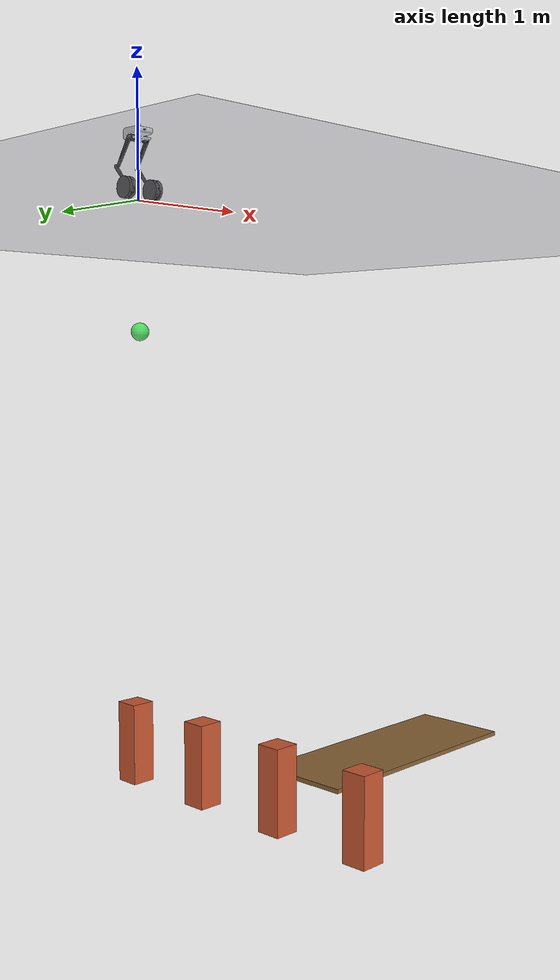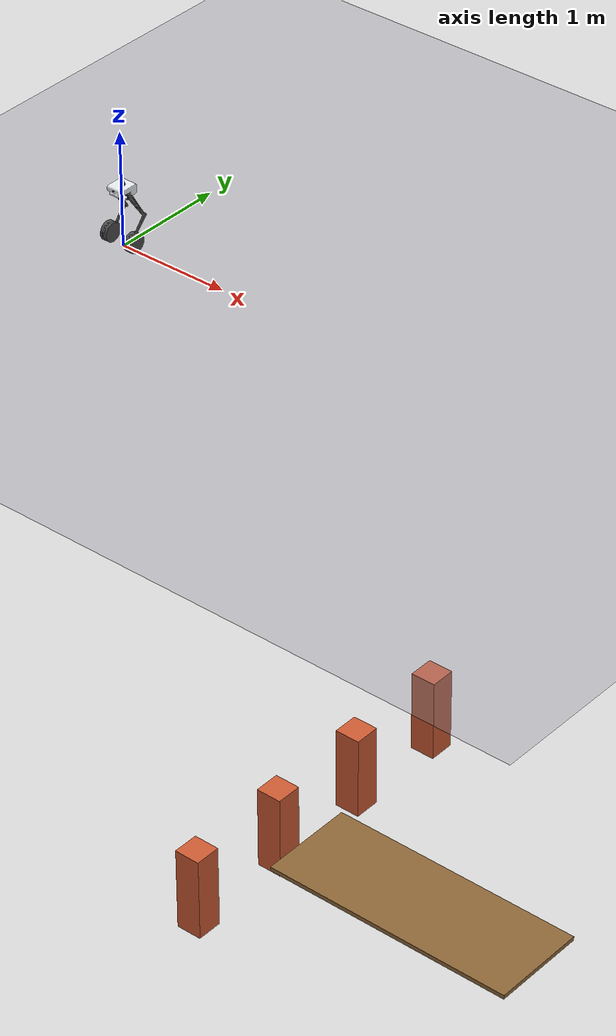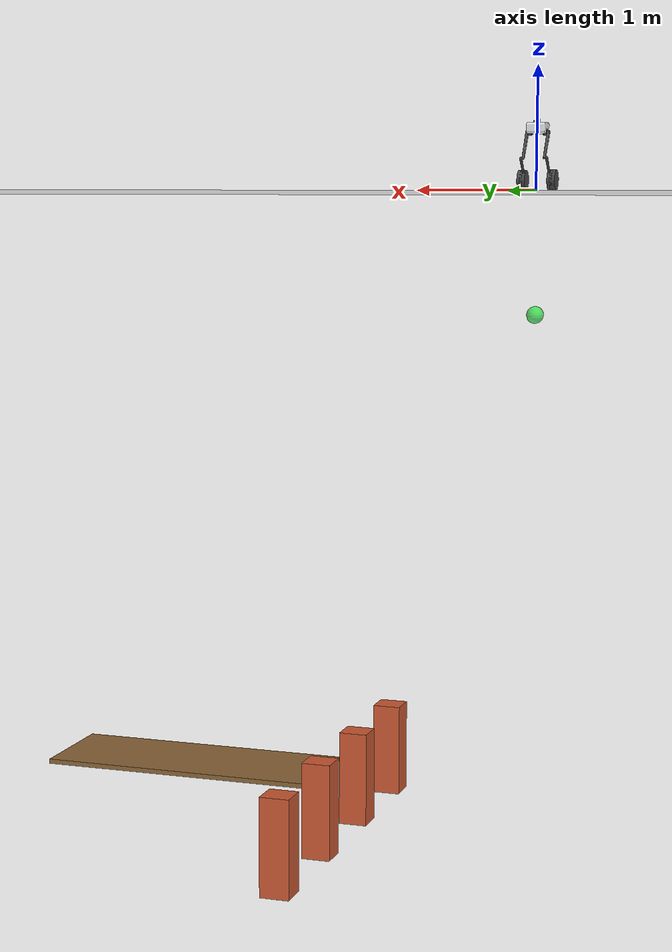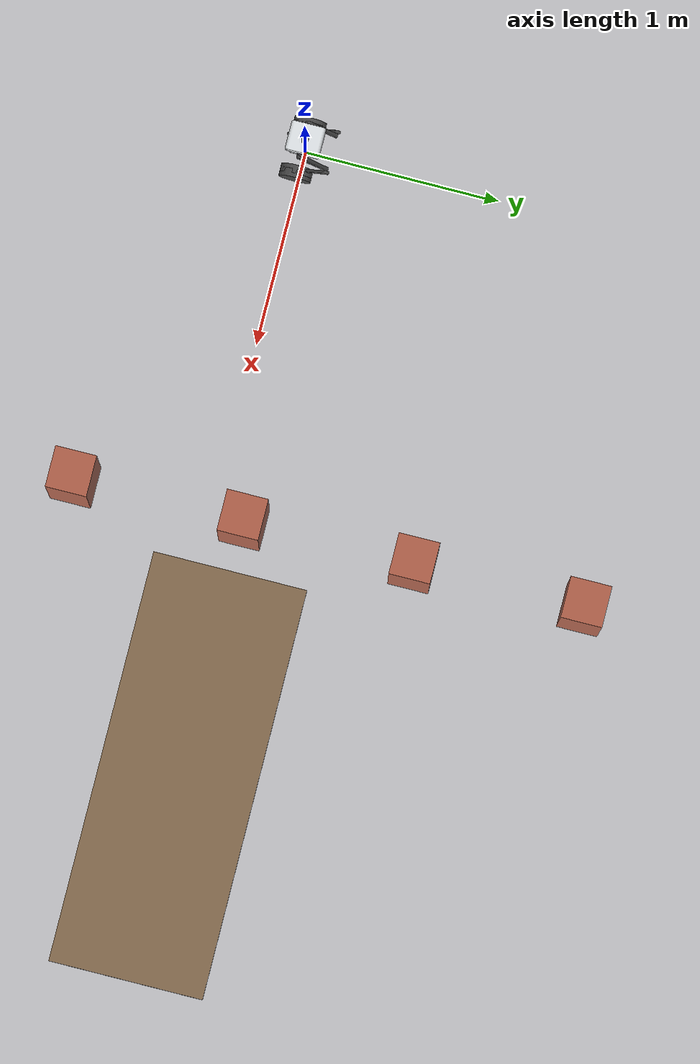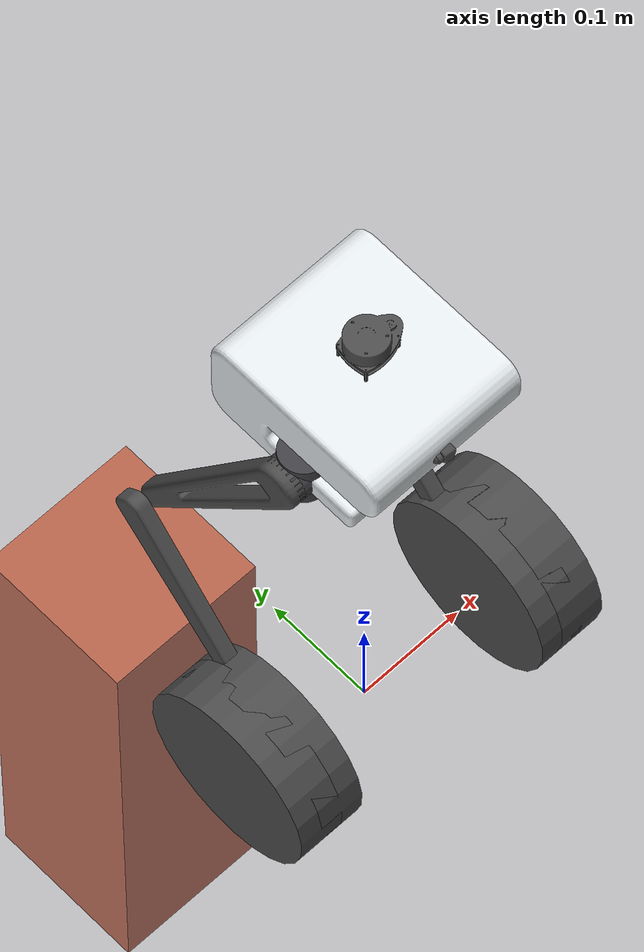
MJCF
<mujoco model="urdf_and_meshes_of_the_robot">
  <compiler angle="radian" meshdir="/mnt/c/Users/mtasfaw/Documents/personal/mybotV1-DRL-BASED/src/urdf_and_meshes_of_the_robot/meshes/"/>

  <option integrator="implicitfast" cone="elliptic"/>

  <size nkey="1"/>

  <visual>
    <global offwidth="1280" offheight="720"/>
  </visual>

  <asset>
    <mesh name="BODY_link" file="BODY_link.STL"/>
    <mesh name="Upper_left_leg" file="Upper_left_leg.STL"/>
    <mesh name="Lower_left_leg" file="Lower_left_leg.STL"/>
    <mesh name="Upper_right_link" file="Upper_right_link.STL"/>
    <mesh name="Lower_right_link" file="Lower_right_link.STL"/>
    <mesh name="lidar_link" file="lidar_link.STL"/>
    <mesh name="camera_link" file="camera_link.STL"/>
    <mesh name="IMU_link" file="IMU_link.STL"/>
  </asset>

  <worldbody>
    <geom name="floor" size="0 0 0.1" type="plane" rgba="0.5 0.5 0.55 1"/>
    <light pos="0 0 3" dir="0 0 -1" specular="0.1 0.1 0.1"/>
    <!-- external 3/4 view that always frames the robot (used by the recorder) -->
    <camera name="track" pos="0.95 -0.95 0.75" mode="targetbody" target="base_link"/>
    <!-- goal marker for Stage-2 navigation; mocap (kinematic), no collision.
         default underground so it is invisible unless a nav env sets mocap_pos. -->
    <body name="goal_marker" mocap="true" pos="0 0 -1">
      <geom type="sphere" size="0.07" rgba="0.1 0.9 0.2 0.7" contype="0" conaffinity="0" group="1"/>
    </body>
    <body name="obstacle_1" mocap="true" pos="1.5 0 -5">
      <geom type="box" size="0.12 0.12 0.40" rgba="0.80 0.35 0.20 1" group="2"/>
    </body>
    <body name="obstacle_2" mocap="true" pos="1.5 1 -5">
      <geom type="box" size="0.12 0.12 0.40" rgba="0.80 0.35 0.20 1" group="2"/>
    </body>
    <body name="obstacle_3" mocap="true" pos="1.5 -1 -5">
      <geom type="box" size="0.12 0.12 0.40" rgba="0.80 0.35 0.20 1" group="2"/>
    </body>
    <body name="obstacle_4" mocap="true" pos="1.5 2 -5">
      <geom type="box" size="0.12 0.12 0.40" rgba="0.80 0.35 0.20 1" group="2"/>
    </body>
    <!-- low "table": a wide slab the robot must SQUAT (duck) under; the env sets its
         height so the slab bottom sits below the robot's standing top. -->
    <body name="table_top" mocap="true" pos="3 0 -5">
      <geom type="box" size="1.2 0.45 0.02" rgba="0.55 0.40 0.22 1" group="2"/>
    </body>
    <body name="base_link" pos="0 0 0.52">
      <joint name="root" type="free"/>
      <body name="BODY_link">
        <inertial pos="0 0.0022646 -0.021333" quat="0.515796 0.483689 -0.483689 0.515796" mass="1.25697" diaginertia="0.00638137 0.0045914 0.00427733"/>
        <geom type="mesh" contype="0" conaffinity="0" group="1" density="0" rgba="0.89804 0.91765 0.92941 1" mesh="BODY_link"/>
        <geom type="mesh" rgba="0.89804 0.91765 0.92941 1" mesh="BODY_link"/>
        <body name="hip_yaw_link_left" pos="0.065 -0.0025 -0.055">
          <inertial pos="0 0 0" mass="0.12" diaginertia="0.0001 0.0001 0.0001"/>
          <joint name="hip_yaw_left" pos="0 0 0" axis="0 0 1" range="-0.785 0.785" actuatorfrcrange="-200 200" armature="0.01" damping="1" frictionloss="0.2"/>
          <geom size="0.02 0.0225" type="cylinder" contype="0" conaffinity="0" group="1" density="0" rgba="0.25 0.25 0.27 1"/>
          <body name="hip_roll_link_left">
            <inertial pos="0 0 0" mass="0.12" diaginertia="0.0001 0.0001 0.0001"/>
            <joint name="hip_roll_left" pos="0 0 0" axis="1 0 0" range="-0.785 0.785" actuatorfrcrange="-200 200" armature="0.01" damping="1" frictionloss="0.2"/>
            <geom size="0.02 0.0225" quat="0.707105 0 0.707108 0" type="cylinder" contype="0" conaffinity="0" group="1" density="0" rgba="0.25 0.25 0.27 1"/>
            <body name="Upper_left_leg" quat="0.339684 0.620172 0.339689 0.620172">
              <inertial pos="6.6396e-09 -0.10715 0.021958" quat="0.500419 0.499574 -0.499581 0.500425" mass="0.32627" diaginertia="0.00222141 0.0021991 4.28908e-05"/>
              <joint name="Upper_left_joint" pos="0 0 0" axis="0 0 -1" range="-1.57 1.57" actuatorfrcrange="-200 200" armature="0.01" damping="1" frictionloss="0.2"/>
              <geom type="mesh" contype="0" conaffinity="0" group="1" density="0" rgba="0.29804 0.29804 0.29804 1" mesh="Upper_left_leg"/>
              <geom type="mesh" rgba="0.29804 0.29804 0.29804 1" mesh="Upper_left_leg"/>
              <body name="Lower_left_leg" pos="0 -0.24941 0.032" quat="0.79946 0 0 -0.600719">
                <inertial pos="3.3987e-08 -0.095731 0.0075383" quat="0.500194 0.499818 -0.499806 0.500182" mass="0.20779" diaginertia="0.0010151 0.0010103 1.24204e-05"/>
                <joint name="Lower_left_joint" pos="0 0 0" axis="0 0 1" range="-1.57 1.57" actuatorfrcrange="-200 200" armature="0.01" damping="1" frictionloss="0.2"/>
                <geom type="mesh" contype="0" conaffinity="0" group="1" density="0" rgba="0.29804 0.29804 0.29804 1" mesh="Lower_left_leg"/>
                <geom type="mesh" rgba="0.29804 0.29804 0.29804 1" mesh="Lower_left_leg"/>
                <body name="Left_wheel" pos="0 -0.22885 0.015" quat="-3.37036e-06 0.917553 0.397614 -1.46052e-06">
                  <inertial pos="7.526e-08 -9.4982e-08 -0.021914" quat="0.653281 0.270598 -0.653281 0.270598" mass="0.12382" diaginertia="0.0003757 0.00019918 0.00019918"/>
                  <joint name="Left_joint" pos="0 0 0" axis="0 0 1" range="-1.57 1.57" actuatorfrcrange="-200 200" armature="0.005" damping="0.1" frictionloss="0.05"/>
                  <geom size="0.0826 0.0211" type="cylinder" contype="0" conaffinity="0" group="1" friction="1.2 0.01" density="0" rgba="0.29804 0.29804 0.29804 1"/>
                  <geom size="0.0826 0.0211" pos="0 0 -0.0211" type="cylinder" friction="1.2 0.01" rgba="0.29804 0.29804 0.29804 1"/>
                </body>
              </body>
            </body>
          </body>
        </body>
        <body name="hip_yaw_link_right" pos="-0.065 -0.0025 -0.055">
          <inertial pos="0 0 0" mass="0.12" diaginertia="0.0001 0.0001 0.0001"/>
          <joint name="hip_yaw_right" pos="0 0 0" axis="0 0 1" range="-0.785 0.785" actuatorfrcrange="-200 200" armature="0.01" damping="1" frictionloss="0.2"/>
          <geom size="0.02 0.0225" type="cylinder" contype="0" conaffinity="0" group="1" density="0" rgba="0.25 0.25 0.27 1"/>
          <body name="hip_roll_link_right">
            <inertial pos="0 0 0" mass="0.12" diaginertia="0.0001 0.0001 0.0001"/>
            <joint name="hip_roll_right" pos="0 0 0" axis="1 0 0" range="-0.785 0.785" actuatorfrcrange="-200 200" armature="0.01" damping="1" frictionloss="0.2"/>
            <geom size="0.02 0.0225" quat="0.707105 0 0.707108 0" type="cylinder" contype="0" conaffinity="0" group="1" density="0" rgba="0.25 0.25 0.27 1"/>
            <body name="Upper_right_link" quat="0.331122 0.624785 -0.331126 -0.624785">
              <inertial pos="9.6623e-09 -0.10715 0.021958" quat="0.500419 0.499574 -0.499581 0.500425" mass="0.32627" diaginertia="0.00222141 0.0021991 4.28908e-05"/>
              <joint name="Upper_right_joint" pos="0 0 0" axis="0 0 1" range="-1.57 1.57" actuatorfrcrange="-200 200" armature="0.01" damping="1" frictionloss="0.2"/>
              <geom type="mesh" contype="0" conaffinity="0" group="1" density="0" rgba="0.29804 0.29804 0.29804 1" mesh="Upper_right_link"/>
              <geom type="mesh" rgba="0.29804 0.29804 0.29804 1" mesh="Upper_right_link"/>
              <body name="Lower_right_link" pos="0 -0.24941 0.034" quat="0.793231 0 0 0.608921">
                <inertial pos="3.29e-08 -0.095731 0.0075383" quat="0.500194 0.499818 -0.499806 0.500182" mass="0.20779" diaginertia="0.0010151 0.0010103 1.24204e-05"/>
                <joint name="Lower_right_joint" pos="0 0 0" axis="0 0 1" range="-1.57 1.57" actuatorfrcrange="-200 200" armature="0.01" damping="1" frictionloss="0.2"/>
                <geom type="mesh" contype="0" conaffinity="0" group="1" density="0" rgba="0.29804 0.29804 0.29804 1" mesh="Lower_right_link"/>
                <geom type="mesh" rgba="0.29804 0.29804 0.29804 1" mesh="Lower_right_link"/>
                <body name="Right_wheel" pos="0 -0.22885 0.015" quat="-3.59294e-06 0.97815 0.207902 -7.63668e-07">
                  <inertial pos="2.9114e-08 -9.5306e-09 -0.021914" quat="0.653281 0.270598 -0.653281 0.270598" mass="0.12382" diaginertia="0.0003757 0.00019918 0.00019918"/>
                  <joint name="Right_joint" pos="0 0 0" axis="0 0 1" armature="0.005" damping="0.1" frictionloss="0.05"/>
                  <geom size="0.0826 0.0211" type="cylinder" contype="0" conaffinity="0" group="1" friction="1.2 0.01" density="0" rgba="0.29804 0.29804 0.29804 1"/>
                  <geom size="0.0826 0.0211" pos="0 0 -0.0211" type="cylinder" friction="1.2 0.01" rgba="0.29804 0.29804 0.29804 1"/>
                </body>
              </body>
            </body>
          </body>
        </body>
        <body name="lidar_link" pos="0.0118365 4.41245e-05 0.0326713" quat="0.707107 0.707107 0 0">
          <inertial pos="-0.00748254 0.010665 9.18485e-05" quat="0.563362 0.570496 0.417593 0.42752" mass="0.0239829" diaginertia="5.58288e-06 4.68159e-06 2.76657e-06"/>
          <geom type="mesh" contype="0" conaffinity="0" group="1" density="0" rgba="0.298039 0.298039 0.298039 1" mesh="lidar_link"/>
          <geom type="mesh" rgba="0.298039 0.298039 0.298039 1" mesh="lidar_link"/>
        </body>
        <body name="camera_link" pos="0 -0.0868463 0.00105377" quat="0.500398 0.5 -0.499602 -0.5">
          <inertial pos="-1.00992e-09 0.000394686 0.00613911" quat="0.688517 0.161073 -0.161073 0.688517" mass="0.00182332" diaginertia="5.10662e-08 4.92416e-08 4.22972e-08"/>
          <geom type="mesh" contype="0" conaffinity="0" group="1" density="0" rgba="0.298039 0.298039 0.298039 1" mesh="camera_link"/>
          <geom type="mesh" rgba="0.298039 0.298039 0.298039 1" mesh="camera_link"/>
          <body name="camera_link_optical" quat="0.5 -0.5 0.5 -0.5"/>
        </body>
        <body name="IMU_link" pos="0 0 0.025" quat="0.707105 0.707108 0 0">
          <inertial pos="3.8375e-06 0.00114502 -0.000169625" quat="0.493701 0.506184 0.500967 0.499069" mass="0.00107256" diaginertia="8.73877e-08 5.53359e-08 3.33276e-08"/>
          <geom type="mesh" contype="0" conaffinity="0" group="1" density="0" rgba="0.298039 0.298039 0.298039 1" mesh="IMU_link"/>
          <geom type="mesh" rgba="0.298039 0.298039 0.298039 1" mesh="IMU_link"/>
          <site name="imu" pos="0 0 0"/>
        </body>
      </body>
    </body>
  </worldbody>

  <actuator>
    <general name="Left_joint_motor" joint="Left_joint" ctrllimited="true" ctrlrange="-20 20" forcelimited="true" forcerange="-20 20"/>
    <general name="Right_joint_motor" joint="Right_joint" ctrllimited="true" ctrlrange="-20 20" forcelimited="true" forcerange="-20 20"/>
    <general name="hip_yaw_left_pos" joint="hip_yaw_left" ctrllimited="true" ctrlrange="-1.57 1.57" forcelimited="true" forcerange="-40 40" biastype="affine" gainprm="150" biasprm="0 -150 -5"/>
    <general name="hip_roll_left_pos" joint="hip_roll_left" ctrllimited="true" ctrlrange="-1.57 1.57" forcelimited="true" forcerange="-40 40" biastype="affine" gainprm="150" biasprm="0 -150 -5"/>
    <general name="Upper_left_joint_pos" joint="Upper_left_joint" ctrllimited="true" ctrlrange="-1.57 1.57" forcelimited="true" forcerange="-40 40" biastype="affine" gainprm="150" biasprm="0 -150 -5"/>
    <general name="Lower_left_joint_pos" joint="Lower_left_joint" ctrllimited="true" ctrlrange="-1.57 1.57" forcelimited="true" forcerange="-40 40" biastype="affine" gainprm="150" biasprm="0 -150 -5"/>
    <general name="hip_yaw_right_pos" joint="hip_yaw_right" ctrllimited="true" ctrlrange="-1.57 1.57" forcelimited="true" forcerange="-40 40" biastype="affine" gainprm="150" biasprm="0 -150 -5"/>
    <general name="hip_roll_right_pos" joint="hip_roll_right" ctrllimited="true" ctrlrange="-1.57 1.57" forcelimited="true" forcerange="-40 40" biastype="affine" gainprm="150" biasprm="0 -150 -5"/>
    <general name="Upper_right_joint_pos" joint="Upper_right_joint" ctrllimited="true" ctrlrange="-1.57 1.57" forcelimited="true" forcerange="-40 40" biastype="affine" gainprm="150" biasprm="0 -150 -5"/>
    <general name="Lower_right_joint_pos" joint="Lower_right_joint" ctrllimited="true" ctrlrange="-1.57 1.57" forcelimited="true" forcerange="-40 40" biastype="affine" gainprm="150" biasprm="0 -150 -5"/>
  </actuator>

  <sensor>
    <framequat objtype="site" objname="imu" name="imu_quat"/>
    <gyro site="imu" name="imu_gyro"/>
    <accelerometer site="imu" name="imu_accel"/>
    <jointpos joint="hip_yaw_left" name="hip_yaw_left_pos_s"/>
    <jointvel joint="hip_yaw_left" name="hip_yaw_left_vel_s"/>
    <jointpos joint="hip_roll_left" name="hip_roll_left_pos_s"/>
    <jointvel joint="hip_roll_left" name="hip_roll_left_vel_s"/>
    <jointpos joint="Upper_left_joint" name="Upper_left_joint_pos_s"/>
    <jointvel joint="Upper_left_joint" name="Upper_left_joint_vel_s"/>
    <jointpos joint="Lower_left_joint" name="Lower_left_joint_pos_s"/>
    <jointvel joint="Lower_left_joint" name="Lower_left_joint_vel_s"/>
    <jointpos joint="hip_yaw_right" name="hip_yaw_right_pos_s"/>
    <jointvel joint="hip_yaw_right" name="hip_yaw_right_vel_s"/>
    <jointpos joint="hip_roll_right" name="hip_roll_right_pos_s"/>
    <jointvel joint="hip_roll_right" name="hip_roll_right_vel_s"/>
    <jointpos joint="Upper_right_joint" name="Upper_right_joint_pos_s"/>
    <jointvel joint="Upper_right_joint" name="Upper_right_joint_vel_s"/>
    <jointpos joint="Lower_right_joint" name="Lower_right_joint_pos_s"/>
    <jointvel joint="Lower_right_joint" name="Lower_right_joint_vel_s"/>
    <jointpos joint="Left_joint" name="Left_joint_pos_s"/>
    <jointvel joint="Left_joint" name="Left_joint_vel_s"/>
    <jointpos joint="Right_joint" name="Right_joint_pos_s"/>
    <jointvel joint="Right_joint" name="Right_joint_vel_s"/>
  </sensor>

  <keyframe>
    <key name="home"/>
  </keyframe>
</mujoco>
